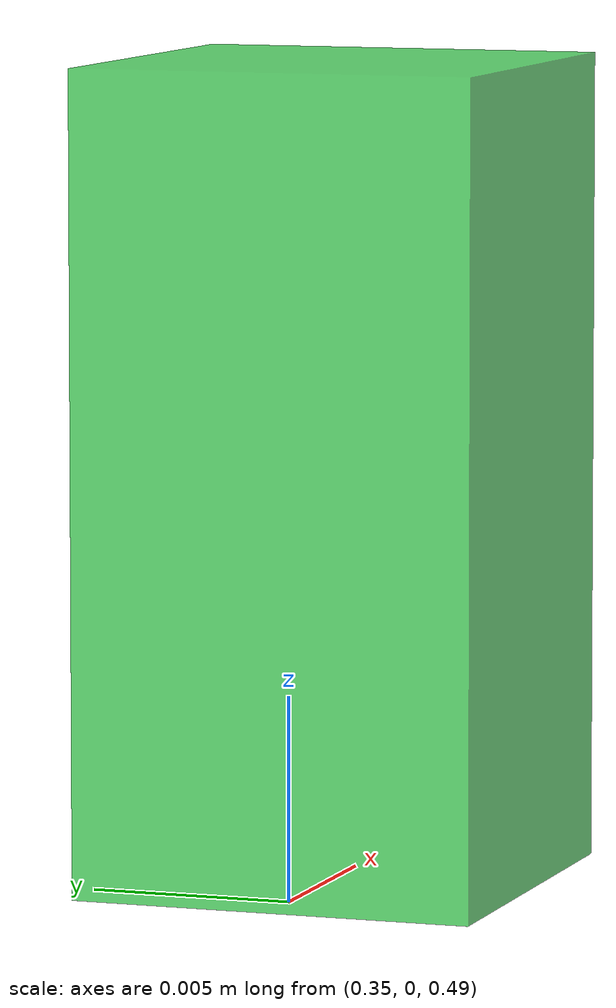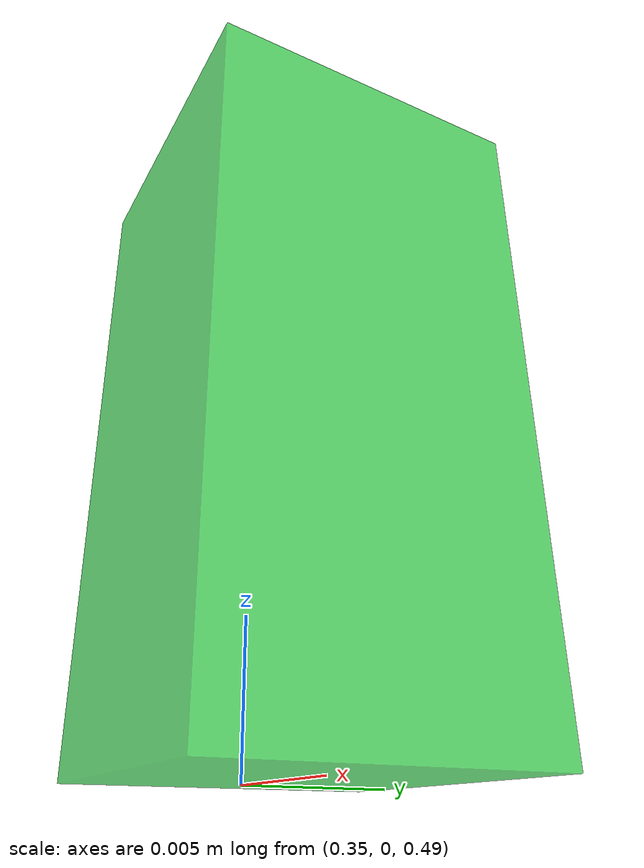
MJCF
<mujoco model="eef_body3">
  <worldbody>
    <body name="eef_body3" pos="0.3535 0 0.5">
      <geom name="eef_geom3" size="0.005 0.005 0.01" type="box" contype="0" conaffinity="0" group="2" mass="1" rgba="0.1 0.8 0.2 0.7"/>
      <site name="eef_body3_site" pos="0 0 0" size="0.01" group="2" rgba="0 0 0 0"/>
      <body name="eef_body3_sensor">
        <site name="sensor_site3" pos="0 0 0" size="0.01" group="2" rgba="0 0 0 0"/>
      </body>
    </body>
  </worldbody>
  <equality>
    <weld name="weld_mid" body1="B_15" body2="eef_body3_sensor" anchor="0 0 0" relpose="0 0 0 0 0 -1 0" torquescale="1" solref="0.001"/>
  </equality>
</mujoco>
